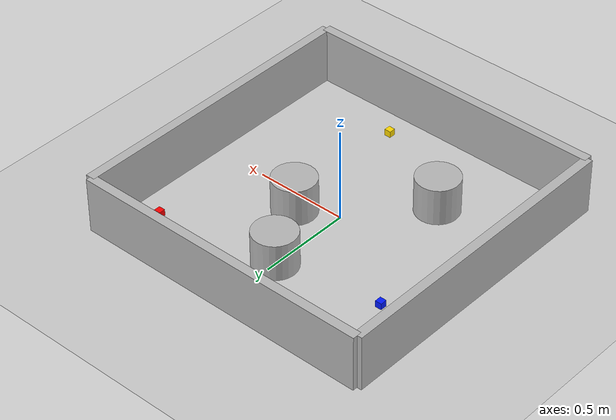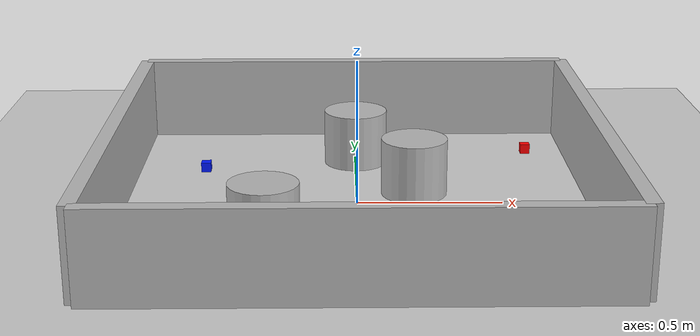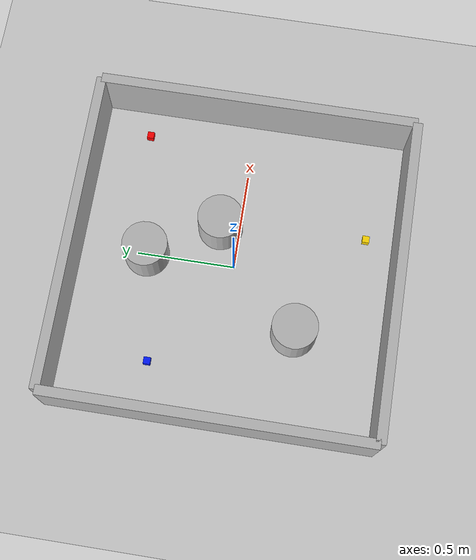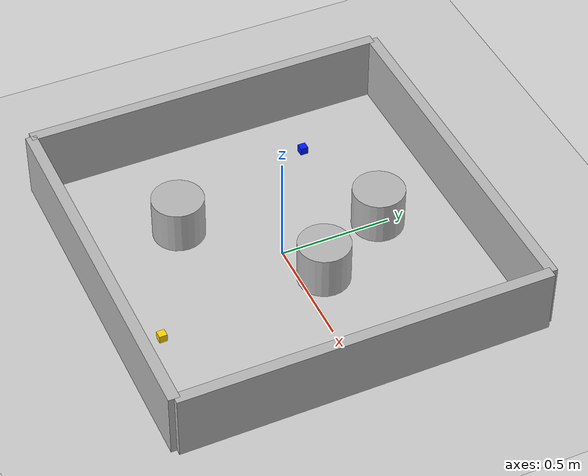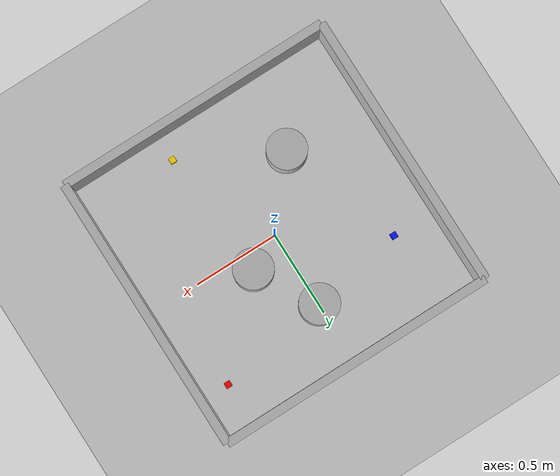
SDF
<?xml version="1.0"?>
<sdf version="1.6">
  <world name="imdl_arena_task5_a">
    <plugin name="gazebo_ros_state" filename="libgazebo_ros_state.so"><update_rate>1.0</update_rate></plugin>
    <scene><shadows>false</shadows></scene>
    <include><uri>model://ground_plane</uri></include>
    <include><uri>model://sun</uri></include>
    <physics name="default_physics" type="ode"><max_step_size>0.001</max_step_size><real_time_update_rate>1000</real_time_update_rate></physics>
    <model name="arena_walls"><static>true</static><link name="walls">
      <visual name="north_wall_visual"><pose>0 0.815 0.15 0 0 0</pose><geometry><box><size>1.63 0.05 0.30</size></box></geometry></visual><collision name="north_wall_collision"><pose>0 0.815 0.15 0 0 0</pose><geometry><box><size>1.63 0.05 0.30</size></box></geometry></collision>
      <visual name="south_wall_visual"><pose>0 -0.815 0.15 0 0 0</pose><geometry><box><size>1.63 0.05 0.30</size></box></geometry></visual><collision name="south_wall_collision"><pose>0 -0.815 0.15 0 0 0</pose><geometry><box><size>1.63 0.05 0.30</size></box></geometry></collision>
      <visual name="east_wall_visual"><pose>0.815 0 0.15 0 0 0</pose><geometry><box><size>0.05 1.63 0.30</size></box></geometry></visual><collision name="east_wall_collision"><pose>0.815 0 0.15 0 0 0</pose><geometry><box><size>0.05 1.63 0.30</size></box></geometry></collision>
      <visual name="west_wall_visual"><pose>-0.815 0 0.15 0 0 0</pose><geometry><box><size>0.05 1.63 0.30</size></box></geometry></visual><collision name="west_wall_collision"><pose>-0.815 0 0.15 0 0 0</pose><geometry><box><size>0.05 1.63 0.30</size></box></geometry></collision>
    </link></model>
    <model name="obstacle_cylinder_1"><static>true</static><pose>0.20 0.10 0.10 0 0 0</pose><link name="link"><visual name="visual"><geometry><cylinder><radius>0.115</radius><length>0.20</length></cylinder></geometry></visual><collision name="collision"><geometry><cylinder><radius>0.115</radius><length>0.20</length></cylinder></geometry></collision></link></model>
    <model name="obstacle_cylinder_2"><static>true</static><pose>-0.30 -0.35 0.10 0 0 0</pose><link name="link"><visual name="visual"><geometry><cylinder><radius>0.115</radius><length>0.20</length></cylinder></geometry></visual><collision name="collision"><geometry><cylinder><radius>0.115</radius><length>0.20</length></cylinder></geometry></collision></link></model>
    <model name="obstacle_cylinder_3"><static>true</static><pose>0.00 0.45 0.10 0 0 0</pose><link name="link"><visual name="visual"><geometry><cylinder><radius>0.115</radius><length>0.20</length></cylinder></geometry></visual><collision name="collision"><geometry><cylinder><radius>0.115</radius><length>0.20</length></cylinder></geometry></collision></link></model>
    <model name="red_block"><static>false</static><allow_auto_disable>true</allow_auto_disable><pose>0.65 0.55 0.0175 0 0 0</pose><link name="link"><gravity>false</gravity><inertial><mass>0.03</mass><inertia><ixx>0.000006125</ixx><iyy>0.000006125</iyy><izz>0.000006125</izz><ixy>0</ixy><ixz>0</ixz><iyz>0</iyz></inertia></inertial><visual name="visual"><geometry><box><size>0.035 0.035 0.035</size></box></geometry><material><ambient>1 0 0 1</ambient><diffuse>1 0 0 1</diffuse></material></visual><collision name="collision"><geometry><box><size>0.035 0.035 0.035</size></box></geometry></collision></link></model>
    <model name="blue_block"><static>false</static><allow_auto_disable>true</allow_auto_disable><pose>-0.55 0.35 0.0175 0 0 0</pose><link name="link"><gravity>false</gravity><inertial><mass>0.03</mass><inertia><ixx>0.000006125</ixx><iyy>0.000006125</iyy><izz>0.000006125</izz><ixy>0</ixy><ixz>0</ixz><iyz>0</iyz></inertia></inertial><visual name="visual"><geometry><box><size>0.035 0.035 0.035</size></box></geometry><material><ambient>0 0.1 1 1</ambient><diffuse>0 0.1 1 1</diffuse></material></visual><collision name="collision"><geometry><box><size>0.035 0.035 0.035</size></box></geometry></collision></link></model>
    <model name="yellow_block"><static>false</static><allow_auto_disable>true</allow_auto_disable><pose>0.25 -0.65 0.0175 0 0 0</pose><link name="link"><gravity>false</gravity><inertial><mass>0.03</mass><inertia><ixx>0.000006125</ixx><iyy>0.000006125</iyy><izz>0.000006125</izz><ixy>0</ixy><ixz>0</ixz><iyz>0</iyz></inertia></inertial><visual name="visual"><geometry><box><size>0.035 0.035 0.035</size></box></geometry><material><ambient>1 0.85 0 1</ambient><diffuse>1 0.85 0 1</diffuse></material></visual><collision name="collision"><geometry><box><size>0.035 0.035 0.035</size></box></geometry></collision></link></model>
  </world>
</sdf>
